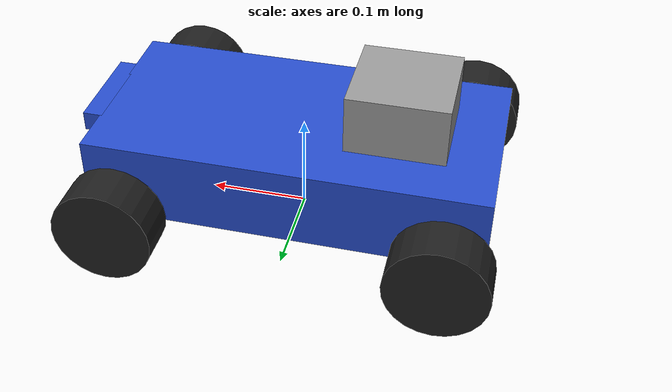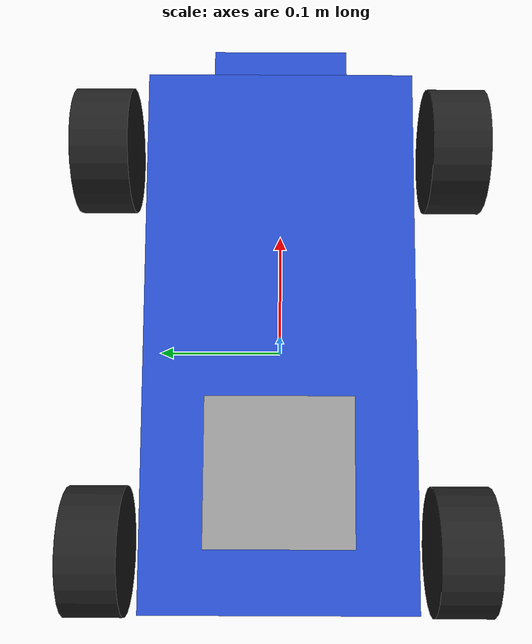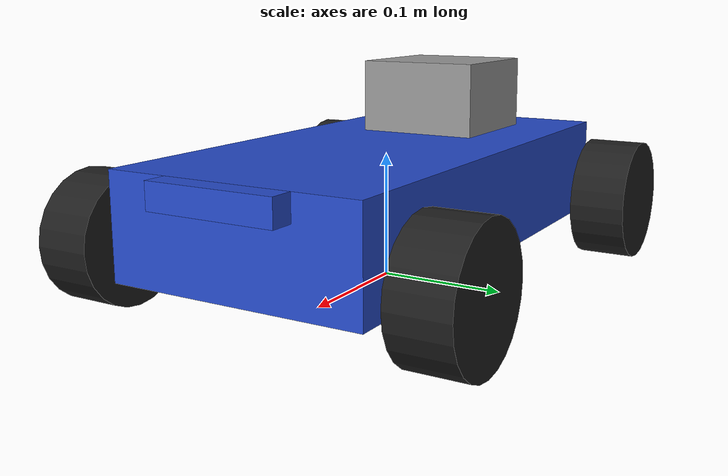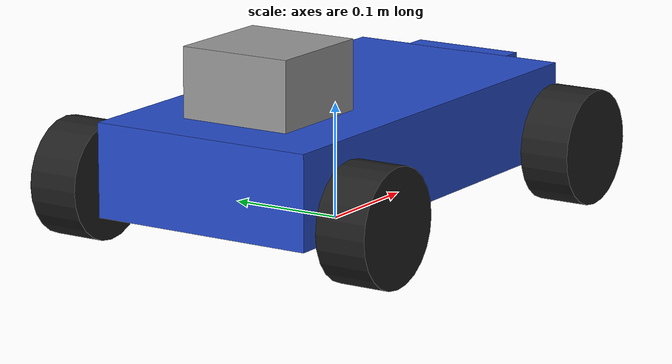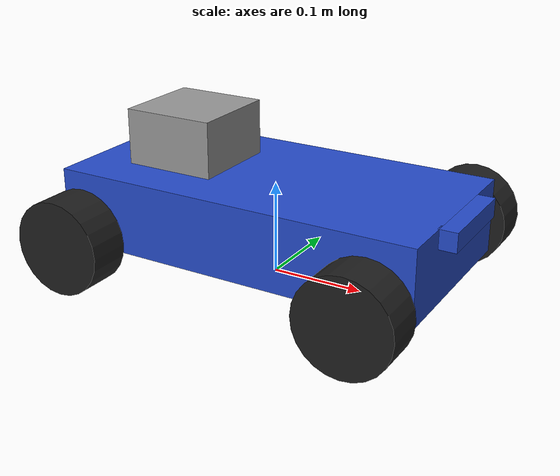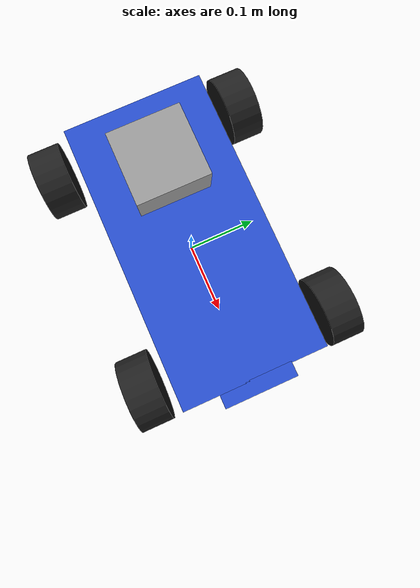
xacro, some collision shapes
<?xml version="1.0"?>

<robot name="f1tenth" xmlns:xacro="http://www.ros.org/wiki/xacro">

<!-- ros_control plugin -->
  <gazebo>
    <plugin name="gazebo_ros_control" filename="libgazebo_ros_control.so">
      <robotSimType>gazebo_ros_control/DefaultRobotHWSim</robotSimType>
    </plugin>
  </gazebo>

<!-- hokuyo -->
  <gazebo reference="laser">
    <material>Gazebo/Grey</material>
    <sensor type="ray" name="hokuyo_sensor">
      <pose>0 0 0.0124 0 0 0</pose>
      <visualize>true</visualize>
      <update_rate>40</update_rate>
      <ray>
        <scan>
          <horizontal>
            <samples>1081</samples>
            <resolution>1</resolution>
            <min_angle>-2.0943951023931953</min_angle>
            <max_angle>2.0943951023931953</max_angle>
          </horizontal>
        </scan>
        <range>
          <min>0.10</min>
          <max>10.0</max>
          <resolution>0.01</resolution>
        </range>
        <noise>
          <mean>0.0</mean>
          <stddev>0.01</stddev>
        </noise>
      </ray>
      <plugin name="gazebo_ros_hokuyo_controller" filename="libgazebo_ros_laser.so">
        <topicName>/scan</topicName>
        <frameName>laser</frameName>
      </plugin>
    </sensor>
  </gazebo>

<!-- camera -->

  <gazebo reference="camera_link">
    <sensor type="depth" name="camera1">
        <always_on>1</always_on>
        <visualize>true</visualize>
        <camera>
            <horizontal_fov>1.047</horizontal_fov>
            <image>
                <width>640</width>
                <height>480</height>
                <format>R8G8B8</format>
            </image>
            <depth_camera>

            </depth_camera>
            <clip>
                <near>0.1</near>
                <far>100</far>
            </clip>
        </camera>
             <plugin name="camera_controller" filename="libgazebo_ros_openni_kinect.so">
             <alwaysOn>true</alwaysOn>
                <updateRate>10.0</updateRate>
                <cameraName>camera</cameraName>
                <frameName>camera_link</frameName>
            <imageTopicName>rgb/image_raw</imageTopicName>
            <depthImageTopicName>depth/image_raw</depthImageTopicName>
            <pointCloudTopicName>depth/points</pointCloudTopicName>
            <cameraInfoTopicName>rgb/camera_info</cameraInfoTopicName>
            <depthImageCameraInfoTopicName>depth/camera_info</depthImageCameraInfoTopicName>
            <pointCloudCutoff>0.4</pointCloudCutoff>
                <hackBaseline>0.07</hackBaseline>
                <distortionK1>0.0</distortionK1>
                <distortionK2>0.0</distortionK2>
                <distortionK3>0.0</distortionK3>
                <distortionT1>0.0</distortionT1>
                <distortionT2>0.0</distortionT2>
            <CxPrime>0.0</CxPrime>
            <Cx>0.0</Cx>
            <Cy>0.0</Cy>
            <focalLength>0.0</focalLength>
            </plugin>
    </sensor>
  </gazebo>

<!--IMU-->

  <gazebo>
    <plugin name="imu_plugin" filename="libgazebo_ros_imu.so">
      <alwaysOn>true</alwaysOn>
      <bodyName>imu_link</bodyName>
      <topicName>imu</topicName>
      <serviceName>imu_service</serviceName>
      <gaussianNoise>0.0</gaussianNoise>
      <updateRate>20.0</updateRate>
    </plugin>
  </gazebo>

<!-- Import Rviz colors -->

  <xacro:include filename="$(find f1tenth_description)/urdf/materials.xacro" />

<!-- Null inertial element -->

  <xacro:macro name="null_inertial">
    <inertial>
      <mass value="0.001"/>
      <inertia ixx="0.001" ixy="0" ixz="0"
               iyy="0.001" iyz="0"
               izz="0.001"/>
      </inertial>
  </xacro:macro>

<!-- CHASSIS -->

  <link name="chassis">
    <pose>0 0 0.0 0 0 0</pose>

    <visual name='chassis_visual'>
      <origin xyz="0 0 0.07" rpy=" 0 0 0"/>
      <geometry>
        <box size=".4 .2 .08"/>
      </geometry>
      <material name="blue" />
    </visual>

    <collision name='chassis_collision'>
      <origin xyz="0 0 0.07" rpy=" 0 0 0"/>
      <geometry>
        <box size=".4 .2 .07"/>
      </geometry>
      <material name="blue" />
    </collision>

    <inertial>
      <origin xyz="0 0 0.075" rpy="0 0 0" />
      <mass value="4.0" />
      <inertia ixx="0.0141666"  ixy="0"  ixz="0"
               iyy="0.0541666"  iyz="0"
               izz="0.0666666" />
    </inertial>
  </link>

  <gazebo reference="chassis">
    <material>Gazebo/Orange</material>
  </gazebo>

<!-- LEFT REAR WHEEL -->

  <link name="left_rear_wheel">

    <collision name="collision">
      <origin xyz="0 0 0" rpy="0 0 0" />
      <geometry>
        <cylinder length="0.045" radius="0.05" />
      </geometry>
    </collision>

    <visual name="left_rear_wheel_visual">
      <origin xyz="0 0 0" rpy="0 0 0" />
      <geometry>
        <cylinder length="0.045" radius="0.05" />
      </geometry>
    <material name="black" />
    </visual>

    <inertial>
      <origin xyz="0 0 0" rpy="0 0 0" />
      <mass value="0.29" />
      <inertia ixx="0.0027" ixy="0"  ixz="0"
               iyy="0.0027" iyz="0"
               izz="0.001111" />
      </inertial>

  </link>

  <!--left rear wheel joint-->

  <joint type="continuous" name="left_rear_wheel_joint">
     <origin xyz="-0.16 0.14 0.05" rpy="1.5708 0 0" />
    <parent link="chassis" />
    <child link="left_rear_wheel" />
    <axis xyz="0 0 -1" />
    <limit effort="10" velocity="100" />
  </joint>

  <!-- Material -->

  <gazebo reference="left_rear_wheel">
    <mu1>0.5</mu1>
    <mu2>0.5</mu2>
    <material>Gazebo/Black</material>
  </gazebo>

  <!--Transmission-->

  <transmission name="left_rear_wheel_trans">
    <type>transmission_interface/SimpleTransmission</type>
    <joint name="left_rear_wheel_joint">
      <hardwareInterface>EffortJointInterface</hardwareInterface>
    </joint>
    <actuator name="rear_motor">
      <hardwareInterface>EffortJointInterface</hardwareInterface>
      <mechanicalReduction>1</mechanicalReduction>
    </actuator>
  </transmission>

<!--RIGHT REAR WHEEL -->

  <link name="right_rear_wheel">

    <collision name="collision">
      <origin xyz="0 0 0.0" rpy="0 0 0" />
      <geometry>
        <cylinder length="0.045" radius="0.05" />
      </geometry>
    </collision>

    <visual name="right_rear_wheel_visual">
      <origin xyz="0 0 0" rpy="0 0 0" />
      <geometry>
        <cylinder length="0.045" radius="0.05" />
      </geometry>
    <material name="black" />
    </visual>

    <inertial>
      <origin xyz="0 0 0" rpy="0 0 0" />
      <mass value="0.29" />
      <inertia ixx="0.0027" ixy="0"  ixz="0"
               iyy="0.0027" iyz="0"
               izz="0.001111" />
    </inertial>
  </link>

  <!--right rear wheel joint-->

  <joint type="continuous" name="right_rear_wheel_joint">
     <origin xyz="-0.16 -0.14 0.05" rpy="1.5708 0 0" />
    <parent link="chassis" />
    <child link="right_rear_wheel" />
    <axis xyz="0 0 -1" />
    <limit effort="10" velocity="100" />
  </joint>

  <!-- Material -->
  <gazebo reference="right_rear_wheel">
    <mu1>0.5</mu1>
    <mu2>0.5</mu2>
    <material>Gazebo/Black</material>
  </gazebo>

  <!--Transmission-->

  <transmission name="right_rear_wheel_trans">
    <type>transmission_interface/SimpleTransmission</type>
    <joint name="right_rear_wheel_joint">
      <hardwareInterface>EffortJointInterface</hardwareInterface>
    </joint>
    <actuator name="rear_motor">
      <hardwareInterface>EffortJointInterface</hardwareInterface>
      <mechanicalReduction>1</mechanicalReduction>
    </actuator>
  </transmission>

<!-- left front wheel steering link-->

  <link name="left_steering_link">
    <xacro:null_inertial/>
  </link>

  <joint type="revolute" name="left_steering_joint">
    <origin xyz="0.16 0.14 0.05" rpy="0 0 0"/>
    <parent link="chassis" />
    <child link="left_steering_link" />
    <axis xyz="0 0 1" />
    <limit effort="10" lower="-0.5" upper="0.5" velocity="0.5" />
  </joint>

  <transmission name="left_steering_trans">
    <type>transmission_interface/SimpleTransmission</type>
    <joint name="left_steering_joint">
      <hardwareInterface>EffortJointInterface</hardwareInterface>
    </joint>
    <actuator name="left_steering_act">
      <hardwareInterface>EffortJointInterface</hardwareInterface>
      <mechanicalReduction>1</mechanicalReduction>
    </actuator>
  </transmission>

<!-- right front wheel steering link-->

  <link name="right_steering_link">
    <xacro:null_inertial/>
  </link>

  <joint type="revolute" name="right_steering_joint">
    <origin xyz="0.16 -0.14 0.05" rpy="0 0 0"/>
    <parent link="chassis" />
    <child link="right_steering_link" />
    <axis xyz="0 0 1" />
    <limit effort="10" lower="-0.5" upper="0.5" velocity="0.5" />
  </joint>

  <transmission name="right_steering_trans">
    <type>transmission_interface/SimpleTransmission</type>
    <joint name="right_steering_joint">
      <hardwareInterface>EffortJointInterface</hardwareInterface>
    </joint>
    <actuator name="right_steering_act">
      <hardwareInterface>EffortJointInterface</hardwareInterface>
      <mechanicalReduction>1</mechanicalReduction>
    </actuator>
  </transmission>

<!-- LEFT FRONT WHEEL -->

  <link name="left_front_wheel">

    <collision name="collision">
      <origin xyz="0 0 0" rpy="0 0 0" />
      <geometry>
        <cylinder length="0.045" radius="0.05" />
      </geometry>
    </collision>

    <visual name="left_front_wheel_visual">
      <origin xyz="0 0 0" rpy="0 0 0" />
      <geometry>
        <cylinder length="0.045" radius="0.05" />
      </geometry>
    <material name="black" />
    </visual>

    <inertial>
      <origin xyz="0 0 0" rpy="0 0 0" />
      <mass value="0.29" />
      <inertia ixx="0.0027" ixy="0"  ixz="0"
               iyy="0.0027" iyz="0"
               izz="0.001111" />
    </inertial>

  </link>

  <!--left front wheel joint-->

  <joint type="continuous" name="left_front_wheel_joint">
    <origin xyz="0 0 0" rpy="1.5708 0 0"/>
    <parent link="left_steering_link" />
    <child link="left_front_wheel" />
    <axis xyz="0 0 -1" />
    <limit effort="10" velocity="100" />
  </joint>

  <!-- Material -->
  <gazebo reference="left_front_wheel">
    <mu1>0.5</mu1>
    <mu2>0.5</mu2>
    <material>Gazebo/Black</material>
  </gazebo>

  <!--Transmission-->

  <transmission name="left_front_wheel_trans">
    <type>transmission_interface/SimpleTransmission</type>
    <joint name="left_front_wheel_joint">
      <hardwareInterface>EffortJointInterface</hardwareInterface>
    </joint>
    <actuator name="left_front_wheel_act">
      <hardwareInterface>EffortJointInterface</hardwareInterface>
      <mechanicalReduction>1</mechanicalReduction>
    </actuator>
  </transmission>

<!-- RIGHT FRONT WHEEL -->

  <link name="right_front_wheel">

    <collision name="collision">
      <origin xyz="0 0 0" rpy="0 0 0" />
      <geometry>
        <cylinder length="0.045" radius="0.05" />
      </geometry>
    </collision>

    <visual name="right_front_wheel_visual">
      <origin xyz="0 0 0" rpy="0 0 0" />
      <geometry>
        <cylinder length="0.045" radius="0.05" />
      </geometry>
    <material name="black" />
    </visual>

    <inertial>
      <origin xyz="0 0 0" rpy="0 0 0" />
      <mass value="0.29" />
      <inertia ixx="0.0027" ixy="0"  ixz="0"
               iyy="0.0027" iyz="0"
               izz="0.001111" />
    </inertial>
  </link>

  <!--right front wheel joint-->

  <joint type="continuous" name="right_front_wheel_joint">
    <origin xyz="0 0 0" rpy="1.5708 0 0"/>
    <parent link="right_steering_link" />
    <child link="right_front_wheel" />
    <axis xyz="0 0 -1" />
    <limit effort="10" velocity="100" />
  </joint>

  <!-- Material -->
  <gazebo reference="right_front_wheel">
    <mu1>0.5</mu1>
    <mu2>0.5</mu2>
    <material>Gazebo/Black</material>
  </gazebo>

  <!--Transmission-->

  <transmission name="right_front_wheel_trans">
    <type>transmission_interface/SimpleTransmission</type>
    <joint name="right_front_wheel_joint">
      <hardwareInterface>EffortJointInterface</hardwareInterface>
    </joint>
    <actuator name="right_front_wheel_act">
      <hardwareInterface>EffortJointInterface</hardwareInterface>
      <mechanicalReduction>1</mechanicalReduction>
    </actuator>
  </transmission>

  <!-- Link6 -->
  <gazebo reference="left_steering_link">
    <mu1>0.6</mu1>
    <mu2>0.6</mu2>
    <material>Gazebo/Orange</material>
  </gazebo>

  <!-- Link7 -->
  <gazebo reference="right_steering_link">
    <mu1>0.6</mu1>
    <mu2>0.6</mu2>
    <material>Gazebo/Orange</material>
  </gazebo>

  <!-- Add Hokuyo laser scanner -->

  <link name="laser">
    <inertial>
        <origin xyz="0 0 0" rpy="0 0 0" />
	    <mass value="0.130" />
	    <inertia ixx="4E-06" ixy="0" ixz="0"
		     iyy="4E-06" iyz="0"
		     izz="4E-06" />
    </inertial>
    <collision>
      <origin xyz="0 0 0" rpy="0 0 0"/>
      <geometry>
        <box size="0.1 0.1 0.1"/>
      </geometry>
    </collision>
    <visual>
      <origin xyz="0 0 0" rpy="0 0 0"/>
      <geometry>
        <mesh filename="package://f1tenth_description/meshes/hokuyo.dae"/>
        <material name="grey" />
      </geometry>
    </visual>
  </link>

  <joint name="hokuyo_joint" type="fixed">
    <origin xyz="-0.1 0 0.12" rpy="0 0 0"/>
    <parent link="chassis" />
    <child link="laser" />
    <axis xyz="0 0 1" />
  </joint>

<!-- Camera -->
  <link name="camera_link">
    <collision>
      <origin xyz="0 0 0" rpy="0 0 0"/>
      <geometry>
    <box size=" 0.02 0.1 0.02"/>
      </geometry>
    </collision>

    <visual>
      <origin xyz="0 0 0" rpy="0 0 0"/>
      <geometry>
        <box size="0.02 0.1 0.02"/>
      </geometry>
      <material name="blue"/>
    </visual>

    <inertial>
      <mass value="1e-5" />
      <origin xyz="0 0 0" rpy="0 0 0"/>
      <inertia ixx="1e-6" ixy="0" ixz="0" iyy="1e-6" iyz="0" izz="1e-6" />
    </inertial>
  </link>

  <joint name="camera_joint" type="fixed">
    <axis xyz="0 1 0" />
    <origin xyz="0.208 0 0.1" rpy="0 0 0"/>
    <parent link="chassis"/>
    <child link="camera_link"/>
  </joint>

<!--IMU-->

  <link name="imu_link">
    <xacro:null_inertial/>
  </link>

  <joint name="imu_joint" type="fixed">
    <axis xyz="0 1 0" />
    <origin xyz="0 0 0.1" rpy="0 0 0"/>
    <parent link="chassis"/>
    <child link="imu_link"/>
  </joint>
</robot>
